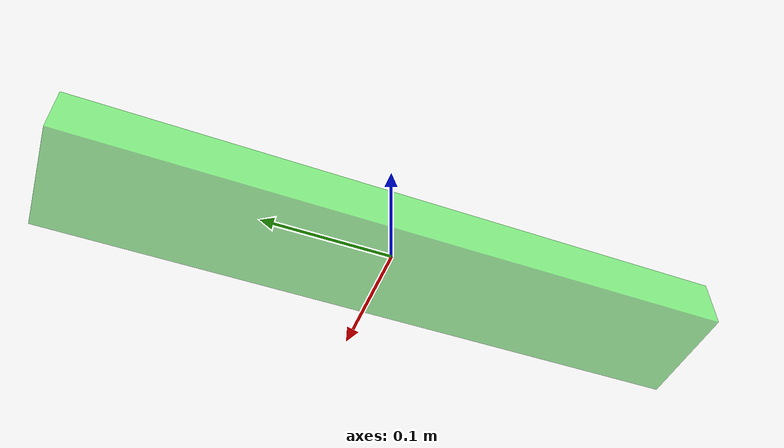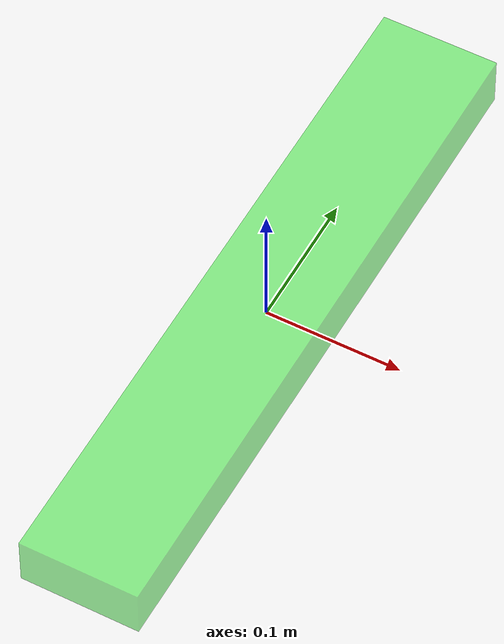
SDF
<?xml version="1.0"?>
<sdf version="1.7">
  <model name="004_sugar_box">
    <!--
    The inertial properties were calculated from the mass and dimensions given
    with the YCB dataset. The sugar box is treated as a constant density box,
    which matches the collision shape.
   -->
    <link name="goal_box">
      <inertial>
        <mass>0.0001</mass>
        <inertia>
          <ixx>0.00001418</ixx>
          <ixy>0</ixy>
          <ixz>0</ixz>
          <iyy>0.00000455</iyy>
          <iyz>0</iyz>
          <izz>0.00001699</izz>
        </inertia>
      </inertial>
      <visual name="base_link_sugar">
        <pose>-0.0 0.0 0.0 0.0 0.0 0.0</pose>
        <geometry>
          <box>
            <size>0.086700 0.5 0.039100</size>
          </box>
        </geometry>
        <material>
          <diffuse> 0.1 0.9 0.1 0.5 </diffuse>
        </material>
      </visual>
      <collision name="box_collision">

      </collision>
    </link>
  </model>
</sdf>
